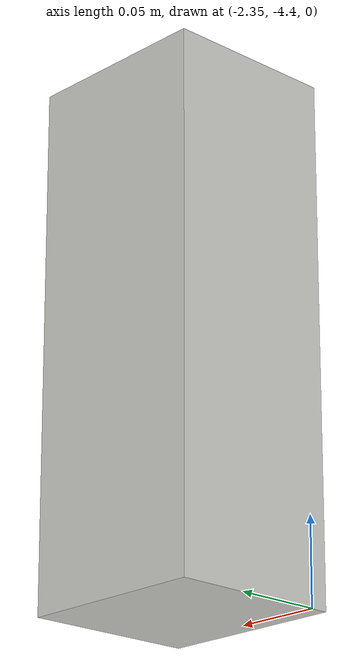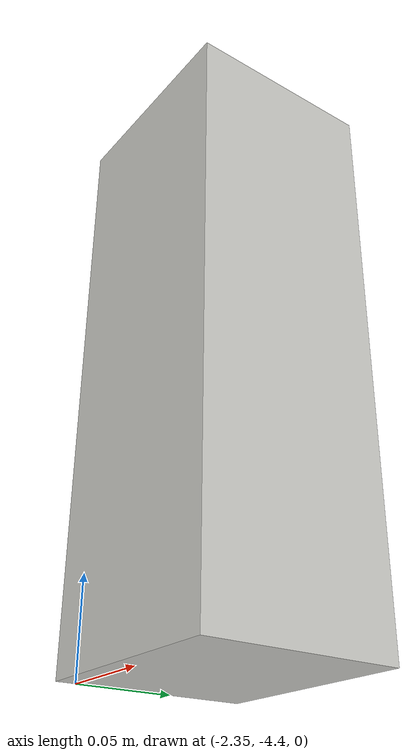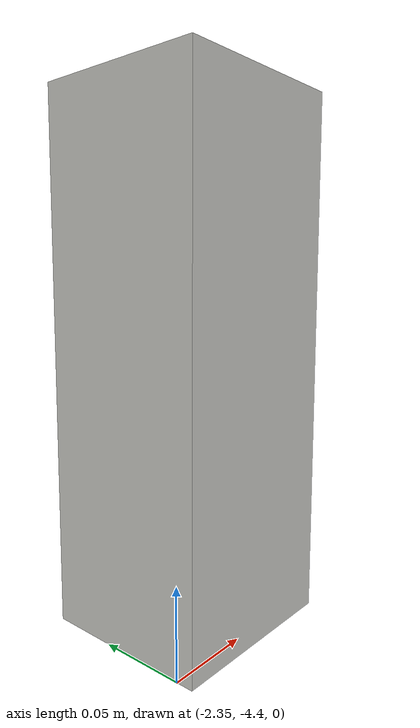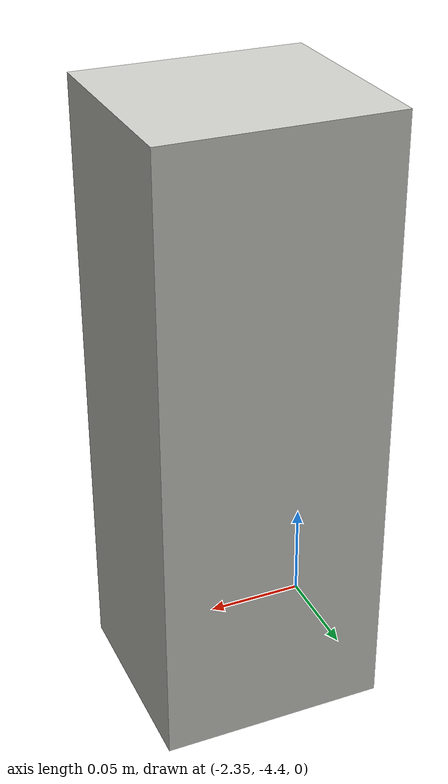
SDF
<?xml version='1.0'?>
<sdf version='1.6'>
  <model name='column'>
    <pose frame=''>-2.295 -4.36 0 0 -0 0</pose>
    <link name='Wall_15'>
      <collision name='Wall_15_Collision'>
        <geometry>
          <box>
            <size>0.11 0.1 0.3</size>
          </box>
        </geometry>
        <pose frame=''>0 0 0.15 0 -0 0</pose>
      </collision>
      <visual name='Wall_15_Visual'>
        <pose frame=''>0 0 0.15 0 -0 0</pose>
        <geometry>
          <box>
            <size>0.11 0.1 0.3</size>
          </box>
        </geometry>
        <material>
          <script>
            <uri>file://media/materials/scripts/gazebo.material</uri>
            <name>Gazebo/CeilingTiled</name>
          </script>
          <ambient>1 1 1 1</ambient>
        </material>
        <meta>
          <layer>0</layer>
        </meta>
      </visual>
      <pose frame=''>0 0 0 0 -0 3.14159</pose>
    </link>
    <static>1</static>
  </model>
</sdf>
